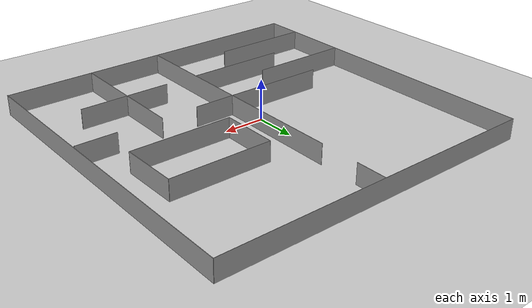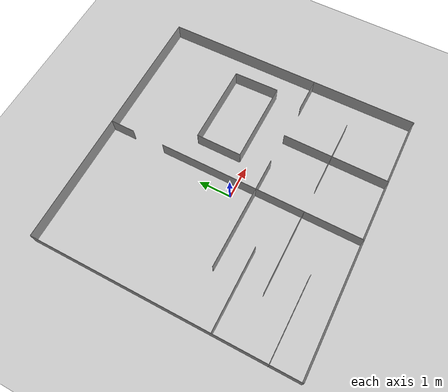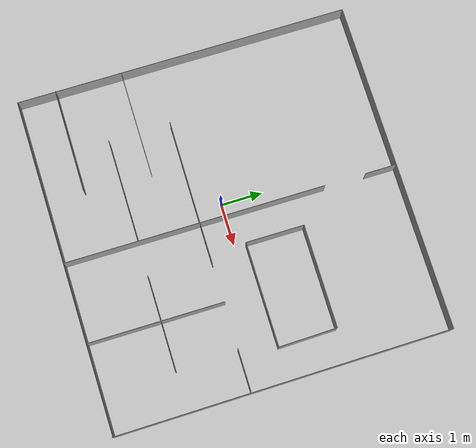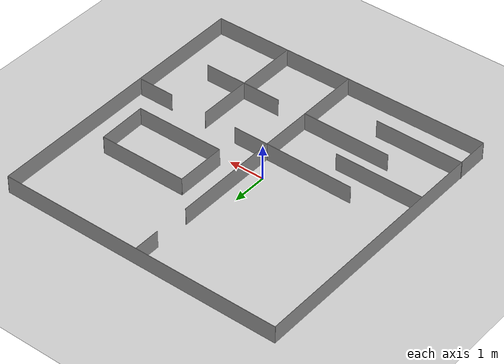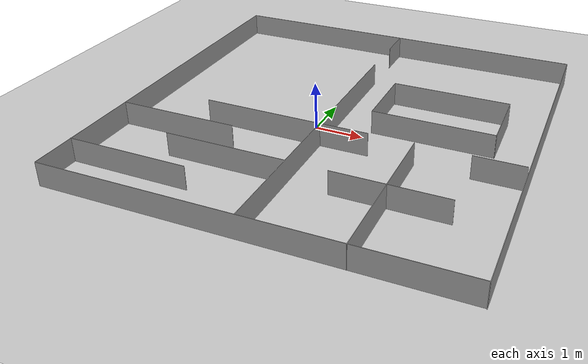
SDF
<sdf version="1.7">
 <world name="default">
  <light name="sun" type="directional">
   <pose>0 0 10 0 -0 0</pose>
   <diffuse>0.8 0.8 0.8 1</diffuse>
   <specular>0.2 0.2 0.2 1</specular>
   <attenuation>
    <range>1000</range>
    <constant>0.9</constant>
    <linear>0.01</linear>
    <quadratic>0.001</quadratic>
   </attenuation>
   <direction>-0.5 0.1 -0.9</direction>
   <spot><inner_angle>0</inner_angle><outer_angle>0</outer_angle><falloff>0</falloff></spot>
  </light>
  <model name="ground_plane">
   <static>1</static>
   <link name="link">
    <collision name="collision">
     <geometry><plane><normal>0 0 1</normal><size>100 100</size></plane></geometry>
     <surface>
      <contact><collide_bitmask>65535</collide_bitmask></contact>
      <friction><ode><mu>100</mu><mu2>50</mu2></ode></friction>
     </surface>
    </collision>
    <visual name="visual">
     <cast_shadows>0</cast_shadows>
     <geometry><plane><normal>0 0 1</normal><size>100 100</size></plane></geometry>
     <material>
      <script><uri>file://media/materials/scripts/gazebo.material</uri><name>Gazebo/Grey</name></script>
     </material>
    </visual>
   </link>
  </model>
  <gravity>0 0 -9.8</gravity>
  <magnetic_field>6e-06 2.3e-05 -4.2e-05</magnetic_field>
  <atmosphere type="adiabatic"/>
  <physics type="ode">
   <max_step_size>0.001</max_step_size>
   <real_time_factor>1</real_time_factor>
   <real_time_update_rate>1000</real_time_update_rate>
  </physics>
  <scene><ambient>0.4 0.4 0.4 1</ambient><background>0.7 0.7 0.7 1</background><shadows>1</shadows></scene>
  <spherical_coordinates>
   <surface_model>EARTH_WGS84</surface_model>
   <latitude_deg>0</latitude_deg>
   <longitude_deg>0</longitude_deg>
   <elevation>0</elevation>
   <heading_deg>0</heading_deg>
  </spherical_coordinates>
  <model name="Untitled">
   <pose>0.380849 0.122412 0 0 -0 0</pose>
   <link name="Wall_0">
    <collision name="Wall_0_Collision">
     <geometry><box><size>8.01652 0.01 0.5</size></box></geometry>
     <pose>0 0 0.25 0 -0 0</pose>
    </collision>
    <visual name="Wall_0_Visual">
     <pose>0 0 0.25 0 -0 0</pose>
     <geometry><box><size>8.01652 0.01 0.5</size></box></geometry>
     <material>
      <script><uri>file://media/materials/scripts/gazebo.material</uri><name>Gazebo/Grey</name></script>
      <ambient>1 1 1 1</ambient>
     </material>
     <meta><layer>0</layer></meta>
    </visual>
    <pose>-4.02476 0.008695 0 0 -0 -1.5708</pose>
   </link>
   <link name="Wall_1">
    <collision name="Wall_1_Collision">
     <geometry><box><size>8.06987 0.01 0.5</size></box></geometry>
     <pose>0 0 0.25 0 -0 0</pose>
    </collision>
    <visual name="Wall_1_Visual">
     <pose>0 0 0.25 0 -0 0</pose>
     <geometry><box><size>8.06987 0.01 0.5</size></box></geometry>
     <material>
      <script><uri>file://media/materials/scripts/gazebo.material</uri><name>Gazebo/Grey</name></script>
      <ambient>1 1 1 1</ambient>
     </material>
     <meta><layer>0</layer></meta>
    </visual>
    <pose>0.005022 -3.97717 0 0 -0 0.008631</pose>
   </link>
   <link name="Wall_11">
    <collision name="Wall_11_Collision">
     <geometry><box><size>2.5 0.01 0.5</size></box></geometry>
     <pose>0 0 0.25 0 -0 0</pose>
    </collision>
    <visual name="Wall_11_Visual">
     <pose>0 0 0.25 0 -0 0</pose>
     <geometry><box><size>2.5 0.01 0.5</size></box></geometry>
     <material>
      <script><uri>file://media/materials/scripts/gazebo.material</uri><name>Gazebo/Grey</name></script>
      <ambient>1 1 1 1</ambient>
     </material>
     <meta><layer>0</layer></meta>
    </visual>
    <pose>-2.77417 -1.48378 0 0 -0 0</pose>
   </link>
   <link name="Wall_13">
    <collision name="Wall_13_Collision">
     <geometry><box><size>2.50769 0.01 0.5</size></box></geometry>
     <pose>0 0 0.25 0 -0 0</pose>
    </collision>
    <visual name="Wall_13_Visual">
     <pose>0 0 0.25 0 -0 0</pose>
     <geometry><box><size>2.50769 0.01 0.5</size></box></geometry>
     <material>
      <script><uri>file://media/materials/scripts/gazebo.material</uri><name>Gazebo/Grey</name></script>
      <ambient>1 1 1 1</ambient>
     </material>
     <meta><layer>0</layer></meta>
    </visual>
    <pose>-1.27194 -0.730692 0 0 -0 3.13547</pose>
   </link>
   <link name="Wall_16">
    <collision name="Wall_16_Collision">
     <geometry><box><size>0.75 0.01 0.5</size></box></geometry>
     <pose>0 0 0.25 0 -0 0</pose>
    </collision>
    <visual name="Wall_16_Visual">
     <pose>0 0 0.25 0 -0 0</pose>
     <geometry><box><size>0.75 0.01 0.5</size></box></geometry>
     <material>
      <script><uri>file://media/materials/scripts/gazebo.material</uri><name>Gazebo/Grey</name></script>
      <ambient>1 1 1 1</ambient>
     </material>
     <meta><layer>0</layer></meta>
    </visual>
    <pose>-0.015761 3.64096 0 0 -0 -1.5708</pose>
   </link>
   <link name="Wall_2">
    <collision name="Wall_2_Collision">
     <geometry><box><size>7.98204 0.01 0.5</size></box></geometry>
     <pose>0 0 0.25 0 -0 0</pose>
    </collision>
    <visual name="Wall_2_Visual">
     <pose>0 0 0.25 0 -0 0</pose>
     <geometry><box><size>7.98204 0.01 0.5</size></box></geometry>
     <material>
      <script><uri>file://media/materials/scripts/gazebo.material</uri><name>Gazebo/Grey</name></script>
      <ambient>1 1 1 1</ambient>
     </material>
     <meta><layer>0</layer></meta>
    </visual>
    <pose>4.00002 0.026086 0 0 -0 1.57952</pose>
   </link>
   <link name="Wall_20">
    <collision name="Wall_20_Collision">
     <geometry><box><size>2.46966 0.01 0.5</size></box></geometry>
     <pose>0 0 0.25 0 -0 0</pose>
    </collision>
    <visual name="Wall_20_Visual">
     <pose>0 0 0.25 0 -0 0</pose>
     <geometry><box><size>2.46966 0.01 0.5</size></box></geometry>
     <material>
      <script><uri>file://media/materials/scripts/gazebo.material</uri><name>Gazebo/Grey</name></script>
      <ambient>1 1 1 1</ambient>
     </material>
     <meta><layer>0</layer></meta>
    </visual>
    <pose>1.95807 1.52543 0 0 -0 -0.002056</pose>
   </link>
   <link name="Wall_22">
    <collision name="Wall_22_Collision">
     <geometry><box><size>1.4 0.01 0.5</size></box></geometry>
     <pose>0 0 0.25 0 -0 0</pose>
    </collision>
    <visual name="Wall_22_Visual">
     <pose>0 0 0.25 0 -0 0</pose>
     <geometry><box><size>1.4 0.01 0.5</size></box></geometry>
     <material>
      <script><uri>file://media/materials/scripts/gazebo.material</uri><name>Gazebo/Grey</name></script>
      <ambient>1 1 1 1</ambient>
     </material>
     <meta><layer>0</layer></meta>
    </visual>
    <pose>0.728239 0.832956 0 0 -0 -1.5708</pose>
   </link>
   <link name="Wall_24">
    <collision name="Wall_24_Collision">
     <geometry><box><size>1.39528 0.01 0.5</size></box></geometry>
     <pose>0 0 0.25 0 -0 0</pose>
    </collision>
    <visual name="Wall_24_Visual">
     <pose>0 0 0.25 0 -0 0</pose>
     <geometry><box><size>1.39528 0.01 0.5</size></box></geometry>
     <material>
      <script><uri>file://media/materials/scripts/gazebo.material</uri><name>Gazebo/Grey</name></script>
      <ambient>1 1 1 1</ambient>
     </material>
     <meta><layer>0</layer></meta>
    </visual>
    <pose>3.20307 0.830428 0 0 -0 -1.54889</pose>
   </link>
   <link name="Wall_26">
    <collision name="Wall_26_Collision">
     <geometry><box><size>1 0.01 0.5</size></box></geometry>
     <pose>0 0 0.25 0 -0 0</pose>
    </collision>
    <visual name="Wall_26_Visual">
     <pose>0 0 0.25 0 -0 0</pose>
     <geometry><box><size>1 0.01 0.5</size></box></geometry>
     <material>
      <script><uri>file://media/materials/scripts/gazebo.material</uri><name>Gazebo/Grey</name></script>
      <ambient>1 1 1 1</ambient>
     </material>
     <meta><layer>0</layer></meta>
    </visual>
    <pose>0.479534 -0.738339 0 0 -0 0</pose>
   </link>
   <link name="Wall_28">
    <collision name="Wall_28_Collision">
     <geometry><box><size>1 0.01 0.5</size></box></geometry>
     <pose>0 0 0.25 0 -0 0</pose>
    </collision>
    <visual name="Wall_28_Visual">
     <pose>0 0 0.25 0 -0 0</pose>
     <geometry><box><size>1 0.01 0.5</size></box></geometry>
     <material>
      <script><uri>file://media/materials/scripts/gazebo.material</uri><name>Gazebo/Grey</name></script>
      <ambient>1 1 1 1</ambient>
     </material>
     <meta><layer>0</layer></meta>
    </visual>
    <pose>3.47394 -0.748339 0 0 -0 0</pose>
   </link>
   <link name="Wall_3">
    <collision name="Wall_3_Collision">
     <geometry><box><size>8 0.01 0.5</size></box></geometry>
     <pose>0 0 0.25 0 -0 0</pose>
    </collision>
    <visual name="Wall_3_Visual">
     <pose>0 0 0.25 0 -0 0</pose>
     <geometry><box><size>8 0.01 0.5</size></box></geometry>
     <material>
      <script><uri>file://media/materials/scripts/gazebo.material</uri><name>Gazebo/Grey</name></script>
      <ambient>1 1 1 1</ambient>
     </material>
     <meta><layer>0</layer></meta>
    </visual>
    <pose>-0.029761 4.01196 0 0 -0 3.14159</pose>
   </link>
   <link name="Wall_30">
    <collision name="Wall_30_Collision">
     <geometry><box><size>3.25 0.01 0.5</size></box></geometry>
     <pose>0 0 0.25 0 -0 0</pose>
    </collision>
    <visual name="Wall_30_Visual">
     <pose>0 0 0.25 0 -0 0</pose>
     <geometry><box><size>3.25 0.01 0.5</size></box></geometry>
     <material>
      <script><uri>file://media/materials/scripts/gazebo.material</uri><name>Gazebo/Grey</name></script>
      <ambient>1 1 1 1</ambient>
     </material>
     <meta><layer>0</layer></meta>
    </visual>
    <pose>1.88924 -2.34604 0 0 -0 -1.5708</pose>
   </link>
   <link name="Wall_32">
    <collision name="Wall_32_Collision">
     <geometry><box><size>2.25 0.01 0.5</size></box></geometry>
     <pose>0 0 0.25 0 -0 0</pose>
    </collision>
    <visual name="Wall_32_Visual">
     <pose>0 0 0.25 0 -0 0</pose>
     <geometry><box><size>2.25 0.01 0.5</size></box></geometry>
     <material>
      <script><uri>file://media/materials/scripts/gazebo.material</uri><name>Gazebo/Grey</name></script>
      <ambient>1 1 1 1</ambient>
     </material>
     <meta><layer>0</layer></meta>
    </visual>
    <pose>1.93524 -2.22504 0 0 -0 0</pose>
   </link>
   <link name="Wall_34">
    <collision name="Wall_34_Collision">
     <geometry><box><size>2.5 0.01 0.5</size></box></geometry>
     <pose>0 0 0.25 0 -0 0</pose>
    </collision>
    <visual name="Wall_34_Visual">
     <pose>0 0 0.25 0 -0 0</pose>
     <geometry><box><size>2.5 0.01 0.5</size></box></geometry>
     <material>
      <script><uri>file://media/materials/scripts/gazebo.material</uri><name>Gazebo/Grey</name></script>
      <ambient>1 1 1 1</ambient>
     </material>
     <meta><layer>0</layer></meta>
    </visual>
    <pose>1.97324 0.137956 0 0 -0 0</pose>
   </link>
   <link name="Wall_5">
    <collision name="Wall_5_Collision">
     <geometry><box><size>2.5 0.01 0.5</size></box></geometry>
     <pose>0 0 0.25 0 -0 0</pose>
    </collision>
    <visual name="Wall_5_Visual">
     <pose>0 0 0.25 0 -0 0</pose>
     <geometry><box><size>2.5 0.01 0.5</size></box></geometry>
     <material>
      <script><uri>file://media/materials/scripts/gazebo.material</uri><name>Gazebo/Grey</name></script>
      <ambient>1 1 1 1</ambient>
     </material>
     <meta><layer>0</layer></meta>
    </visual>
    <pose>-2.78985 -3.09083 0 0 -0 0</pose>
   </link>
   <link name="Wall_7">
    <collision name="Wall_7_Collision">
     <geometry><box><size>2.5 0.01 0.5</size></box></geometry>
     <pose>0 0 0.25 0 -0 0</pose>
    </collision>
    <visual name="Wall_7_Visual">
     <pose>0 0 0.25 0 -0 0</pose>
     <geometry><box><size>2.5 0.01 0.5</size></box></geometry>
     <material>
      <script><uri>file://media/materials/scripts/gazebo.material</uri><name>Gazebo/Grey</name></script>
      <ambient>1 1 1 1</ambient>
     </material>
     <meta><layer>0</layer></meta>
    </visual>
    <pose>-1.2656 -2.21404 0 0 -0 0</pose>
   </link>
   <link name="Wall_9">
    <collision name="Wall_9_Collision">
     <geometry><box><size>6.25 0.01 0.5</size></box></geometry>
     <pose>0 0 0.25 0 -0 0</pose>
    </collision>
    <visual name="Wall_9_Visual">
     <pose>0 0 0.25 0 -0 0</pose>
     <geometry><box><size>6.25 0.01 0.5</size></box></geometry>
     <material>
      <script><uri>file://media/materials/scripts/gazebo.material</uri><name>Gazebo/Grey</name></script>
      <ambient>1 1 1 1</ambient>
     </material>
     <meta><layer>0</layer></meta>
    </visual>
    <pose>-0.019761 -0.848044 0 0 -0 1.5708</pose>
   </link>
   <static>1</static>
  </model>
 </world>
</sdf>
